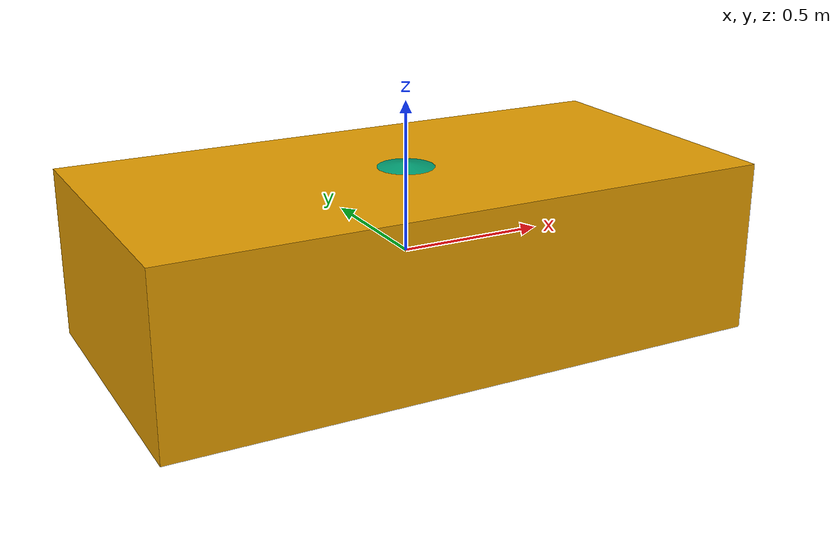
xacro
<?xml version="1.0"?>
<robot name="common_base" xmlns:xacro="http://ros.org/wiki/xacro">

  <xacro:property name="model_name" value="$(arg model_name)"/>

  <link name='chassis'>
    <pose>-0.151427 -0 0.175 0 -0 0</pose>
    <inertial>
      <mass value="1.14395"/>
      <inertia ixx="0.126164" ixy="0" ixz="0" iyy="0.416519" iyz="0" izz="0.481014"/>
    </inertial>
    <visual name='visual'>
      <geometry>
        <box size="2.01142 1 0.568726"/>
      </geometry>
    </visual>
    <collision name='collision'>
      <geometry>
        <box size="2.01142 1 0.568726"/>
      </geometry>
    </collision>
  </link>

  <link name="lidar_link">
    <pose>0 0 0.5 0 0 0</pose>
    <inertial>
      <mass value="0.1"/>
      <inertia ixx="0.000166667" ixy="0" ixz="0" iyy="0.000166667" iyz="0" izz="0.000166667"/>
    </inertial>
    <collision name="collision">
      <geometry>
        <box size="0.1 0.1 0.1"/>
      </geometry>
    </collision>
    <visual name="visual">
      <geometry>
        <box size="0.1 0.1 0.1"/>
      </geometry>
    </visual>
  </link>

  <link name='left_wheel'>
    <pose>0.554283 0.625029 -0.025 -1.5707 0 0</pose>
    <inertial>
      <mass value="2"/>
      <inertia ixx="0.145833" ixy="0" ixz="0" iyy="0.145833" iyz="0" izz="0.125"/>
    </inertial>
    <visual name='visual'>
      <geometry>
        <sphere radius="0.3"/>
      </geometry>
    </visual>
    <collision name='collision'>
      <geometry>
        <sphere radius="0.3"/>
      </geometry>
    </collision>
  </link>

  <link name='right_wheel'>
    <pose>0.554282 -0.625029 -0.025 -1.5707 0 0</pose>
    <inertial>
      <mass value="2"/>
      <inertia ixx="0.145833" ixy="0" ixz="0" iyy="0.145833" iyz="0" izz="0.125"/>
    </inertial>
    <visual name='visual'>
      <geometry>
        <sphere radius="0.3"/>
      </geometry>
    </visual>
    <collision name='collision'>
      <geometry>
        <sphere radius="0.3"/>
      </geometry>
    </collision>
  </link>

  <joint name='lidar_sensor_joint' type='fixed'>
    <parent link="chassis"/>
    <child link="lidar_link"/>
  </joint>

  <joint name='left_wheel_joint' type='revolute'>
    <parent link="chassis"/>
    <child link="left_wheel"/>
    <axis xyz="0 0 1"/>
    <limit effort="30" velocity="1.0" lower="-1.79769e+308" upper="1.79769e+308"/>
  </joint>

  <joint name='right_wheel_joint' type='revolute'>
    <parent link="chassis"/>
    <child link="right_wheel"/>
    <axis xyz="0 0 1"/>
    <limit effort="30" velocity="1.0" lower="-1.79769e+308" upper="1.79769e+308"/>
  </joint>

  <gazebo>
    <plugin
      filename="libignition-gazebo-diff-drive-system.so"
      name="ignition::gazebo::systems::DiffDrive"
    >
      <left_joint>left_wheel_joint</left_joint>
      <right_joint>right_wheel_joint</right_joint>
      <wheel_separation>1.25</wheel_separation>
      <wheel_radius>0.3</wheel_radius>
      <odom_publish_frequency>1</odom_publish_frequency>
    </plugin>

    <plugin filename="libignition-gazebo-logical-camera-system.so"
        name="ignition::gazebo::systems::LogicalCamera">
    </plugin>

    <plugin
      filename="ignition-gazebo-imu-system"
      name="ignition::gazebo::systems::Imu">
    </plugin>

    <plugin filename="libignition-gazebo-pose-publisher-system.so"
        name="ignition::gazebo::systems::PosePublisher">
        <publish_link_pose>true</publish_link_pose>
        <publish_sensor_pose>false</publish_sensor_pose>
        <publish_collision_pose>false</publish_collision_pose>
        <publish_visual_pose>false</publish_visual_pose>
        <publish_nested_model_pose>true</publish_nested_model_pose>
        <use_pose_vector_msg>true</use_pose_vector_msg>
        <static_publisher>true</static_publisher>
        <static_update_frequency>30</static_update_frequency>
    </plugin>
  </gazebo>

  <gazebo reference="chassis">
     <sensor name="imu_sensor" type="imu">
      <always_on>1</always_on>
      <update_rate>1</update_rate>
      <visualize>true</visualize>
      <topic>model/${model_name}/imu</topic>
    </sensor>
  </gazebo>
  <gazebo reference="lidar_link">
     <sensor name='gpu_lidar' type='gpu_lidar'>
      <pose>0 0 0 0 0 0</pose>
      <topic>model/${model_name}/sonar</topic>
      <update_rate>10</update_rate>
      <lidar>
        <scan>
          <horizontal>
            <samples>1</samples>
            <resolution>1</resolution>
            <min_angle>0</min_angle>
            <max_angle>0</max_angle>
          </horizontal>
        </scan>
        <range>
          <min>0.08</min>
          <max>10.0</max>
          <resolution>0.02</resolution>
        </range>
      </lidar>
      <alwaysOn>1</alwaysOn>
      <visualize>true</visualize>
    </sensor>
    <sensor name="logical_camera" type="logical_camera">
      <topic>model/${model_name}/logical_camera</topic>
      <logical_camera>
        <near>0.55</near>
        <far>5.5</far>
        <horizontal_fov>1.3962634</horizontal_fov>
        <aspect_ratio>1</aspect_ratio>
      </logical_camera>
      <visualize>true</visualize>
      <always_on>true</always_on>
      <update_rate>10</update_rate>
    </sensor>
  </gazebo>
</robot>
